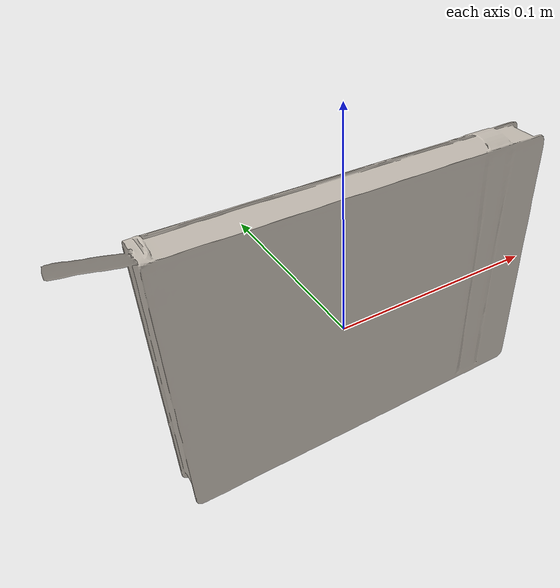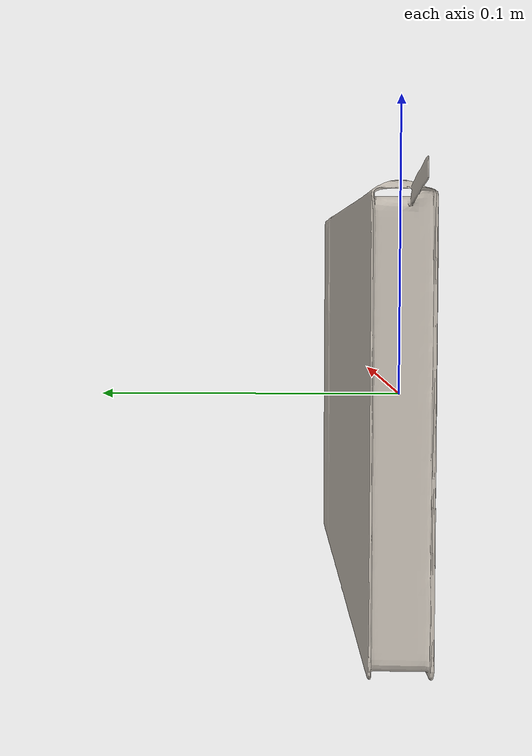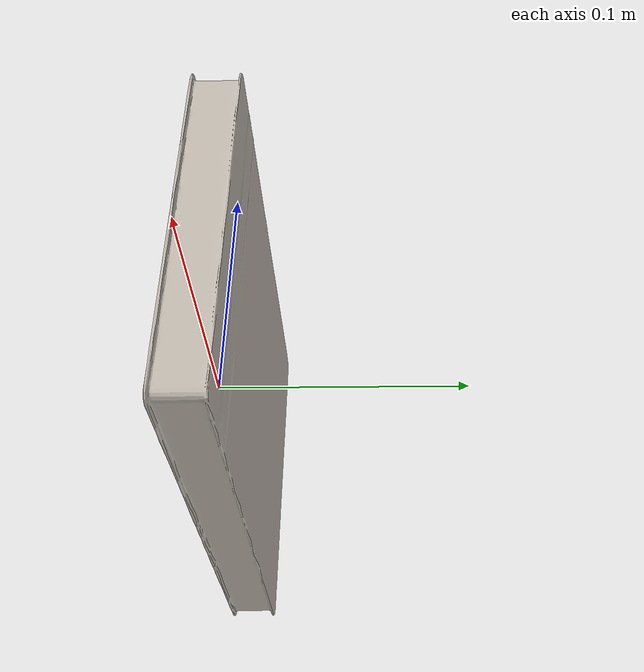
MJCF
<mujoco model="092_notebook">
  <asset>
    <mesh name="092_notebook_visual" file="092_notebook_visual.obj"/>
    <mesh name="092_notebook_collision" file="092_notebook_collision.stl"/>
    <texture name="092_notebook_tex" type="2d" file="092_notebook.png"/>
    <material name="092_notebook_mat" texture="092_notebook_tex"/>
  </asset>
  <worldbody>
    <body name="092_notebook" pos="0 0 0">
      <freejoint/>
      <geom type="mesh" mesh="092_notebook_visual" material="092_notebook_mat"
            mass="0.2039" contype="0" conaffinity="0"/>
      <geom type="mesh" mesh="092_notebook_collision" mass="0"
            contype="1" conaffinity="1"
            friction="0.5 .005 0.01"
            rgba="0 0 0 0"/>
    </body>
  </worldbody>
</mujoco>
